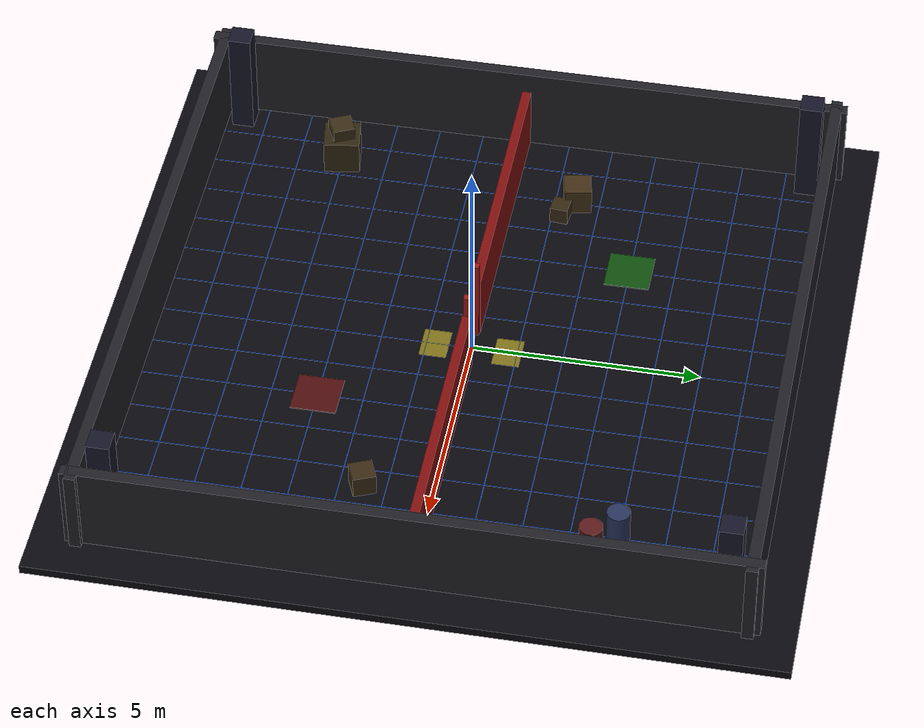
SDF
<sdf version="1.9">
 <world name="swarm_arena">
  <scene><ambient>0.3 0.3 0.35 1</ambient><background>0.05 0.05 0.08 1</background></scene>
  <physics name="1ms" type="ignored">
   <max_step_size>0.001</max_step_size>
   <real_time_factor>1.0</real_time_factor>
  </physics>
  <plugin filename="gz-sim-physics-system" name="gz::sim::systems::Physics"/>
  <plugin filename="gz-sim-scene-broadcaster-system" name="gz::sim::systems::SceneBroadcaster"/>
  <plugin filename="gz-sim-user-commands-system" name="gz::sim::systems::UserCommands"/>
  <light type="directional" name="sun">
   <pose>5 5 15 0 0 0</pose>
   <diffuse>0.85 0.85 0.8 1</diffuse>
   <specular>0.4 0.4 0.4 1</specular>
   <direction>-0.4 -0.3 -0.9</direction>
  </light>
  <light type="directional" name="fill">
   <cast_shadows>false</cast_shadows>
   <pose>-5 -5 10 0 0 0</pose>
   <diffuse>0.25 0.25 0.35 1</diffuse>
   <specular>0.0 0.0 0.0 1</specular>
   <direction>0.4 0.3 -0.8</direction>
  </light>
  <light type="directional" name="rim">
   <cast_shadows>false</cast_shadows>
   <pose>0 -8 8 0 0 0</pose>
   <diffuse>0.15 0.15 0.25 1</diffuse>
   <specular>0.1 0.1 0.1 1</specular>
   <direction>0 0.6 -0.8</direction>
  </light>
  <model name="ground_platform">
   <static>true</static>
   <pose>0 0 -0.1 0 0 0</pose>
   <link name="link">
    <collision name="collision"><geometry><box><size>16 16 0.2</size></box></geometry></collision>
    <visual name="top">
     <geometry><box><size>16 16 0.2</size></box></geometry>
     <material><ambient>0.03 0.03 0.05 1</ambient><diffuse>0.03 0.03 0.05 1</diffuse></material>
    </visual>
   </link>
  </model>
  <model name="grid_lines">
   <static>true</static>
   <pose>0 0 0.002 0 0 0</pose>
   <link name="link">
    <visual name="h_n7">
     <pose>0 -7 0 0 0 0</pose>
     <geometry><box><size>14 0.015 0.001</size></box></geometry>
     <material><ambient>0.0 0.3 1.0 1</ambient><diffuse>0.0 0.3 1.0 1</diffuse></material>
    </visual>
    <visual name="h_n6">
     <pose>0 -6 0 0 0 0</pose>
     <geometry><box><size>14 0.015 0.001</size></box></geometry>
     <material><ambient>0.0 0.3 1.0 1</ambient><diffuse>0.0 0.3 1.0 1</diffuse></material>
    </visual>
    <visual name="h_n5">
     <pose>0 -5 0 0 0 0</pose>
     <geometry><box><size>14 0.015 0.001</size></box></geometry>
     <material><ambient>0.0 0.3 1.0 1</ambient><diffuse>0.0 0.3 1.0 1</diffuse></material>
    </visual>
    <visual name="h_n4">
     <pose>0 -4 0 0 0 0</pose>
     <geometry><box><size>14 0.015 0.001</size></box></geometry>
     <material><ambient>0.0 0.3 1.0 1</ambient><diffuse>0.0 0.3 1.0 1</diffuse></material>
    </visual>
    <visual name="h_n3">
     <pose>0 -3 0 0 0 0</pose>
     <geometry><box><size>14 0.015 0.001</size></box></geometry>
     <material><ambient>0.0 0.3 1.0 1</ambient><diffuse>0.0 0.3 1.0 1</diffuse></material>
    </visual>
    <visual name="h_n2">
     <pose>0 -2 0 0 0 0</pose>
     <geometry><box><size>14 0.015 0.001</size></box></geometry>
     <material><ambient>0.0 0.3 1.0 1</ambient><diffuse>0.0 0.3 1.0 1</diffuse></material>
    </visual>
    <visual name="h_n1">
     <pose>0 -1 0 0 0 0</pose>
     <geometry><box><size>14 0.015 0.001</size></box></geometry>
     <material><ambient>0.0 0.3 1.0 1</ambient><diffuse>0.0 0.3 1.0 1</diffuse></material>
    </visual>
    <visual name="h_0">
     <geometry><box><size>14 0.015 0.001</size></box></geometry>
     <material><ambient>0.0 0.3 1.0 1</ambient><diffuse>0.0 0.3 1.0 1</diffuse></material>
    </visual>
    <visual name="h_p1">
     <pose>0 1 0 0 0 0</pose>
     <geometry><box><size>14 0.015 0.001</size></box></geometry>
     <material><ambient>0.0 0.3 1.0 1</ambient><diffuse>0.0 0.3 1.0 1</diffuse></material>
    </visual>
    <visual name="h_p2">
     <pose>0 2 0 0 0 0</pose>
     <geometry><box><size>14 0.015 0.001</size></box></geometry>
     <material><ambient>0.0 0.3 1.0 1</ambient><diffuse>0.0 0.3 1.0 1</diffuse></material>
    </visual>
    <visual name="h_p3">
     <pose>0 3 0 0 0 0</pose>
     <geometry><box><size>14 0.015 0.001</size></box></geometry>
     <material><ambient>0.0 0.3 1.0 1</ambient><diffuse>0.0 0.3 1.0 1</diffuse></material>
    </visual>
    <visual name="h_p4">
     <pose>0 4 0 0 0 0</pose>
     <geometry><box><size>14 0.015 0.001</size></box></geometry>
     <material><ambient>0.0 0.3 1.0 1</ambient><diffuse>0.0 0.3 1.0 1</diffuse></material>
    </visual>
    <visual name="h_p5">
     <pose>0 5 0 0 0 0</pose>
     <geometry><box><size>14 0.015 0.001</size></box></geometry>
     <material><ambient>0.0 0.3 1.0 1</ambient><diffuse>0.0 0.3 1.0 1</diffuse></material>
    </visual>
    <visual name="h_p6">
     <pose>0 6 0 0 0 0</pose>
     <geometry><box><size>14 0.015 0.001</size></box></geometry>
     <material><ambient>0.0 0.3 1.0 1</ambient><diffuse>0.0 0.3 1.0 1</diffuse></material>
    </visual>
    <visual name="h_p7">
     <pose>0 7 0 0 0 0</pose>
     <geometry><box><size>14 0.015 0.001</size></box></geometry>
     <material><ambient>0.0 0.3 1.0 1</ambient><diffuse>0.0 0.3 1.0 1</diffuse></material>
    </visual>
    <visual name="v_n7">
     <pose>-7 0 0 0 0 0</pose>
     <geometry><box><size>0.015 14 0.001</size></box></geometry>
     <material><ambient>0.0 0.3 1.0 1</ambient><diffuse>0.0 0.3 1.0 1</diffuse></material>
    </visual>
    <visual name="v_n6">
     <pose>-6 0 0 0 0 0</pose>
     <geometry><box><size>0.015 14 0.001</size></box></geometry>
     <material><ambient>0.0 0.3 1.0 1</ambient><diffuse>0.0 0.3 1.0 1</diffuse></material>
    </visual>
    <visual name="v_n5">
     <pose>-5 0 0 0 0 0</pose>
     <geometry><box><size>0.015 14 0.001</size></box></geometry>
     <material><ambient>0.0 0.3 1.0 1</ambient><diffuse>0.0 0.3 1.0 1</diffuse></material>
    </visual>
    <visual name="v_n4">
     <pose>-4 0 0 0 0 0</pose>
     <geometry><box><size>0.015 14 0.001</size></box></geometry>
     <material><ambient>0.0 0.3 1.0 1</ambient><diffuse>0.0 0.3 1.0 1</diffuse></material>
    </visual>
    <visual name="v_n3">
     <pose>-3 0 0 0 0 0</pose>
     <geometry><box><size>0.015 14 0.001</size></box></geometry>
     <material><ambient>0.0 0.3 1.0 1</ambient><diffuse>0.0 0.3 1.0 1</diffuse></material>
    </visual>
    <visual name="v_n2">
     <pose>-2 0 0 0 0 0</pose>
     <geometry><box><size>0.015 14 0.001</size></box></geometry>
     <material><ambient>0.0 0.3 1.0 1</ambient><diffuse>0.0 0.3 1.0 1</diffuse></material>
    </visual>
    <visual name="v_n1">
     <pose>-1 0 0 0 0 0</pose>
     <geometry><box><size>0.015 14 0.001</size></box></geometry>
     <material><ambient>0.0 0.3 1.0 1</ambient><diffuse>0.0 0.3 1.0 1</diffuse></material>
    </visual>
    <visual name="v_0">
     <geometry><box><size>0.015 14 0.001</size></box></geometry>
     <material><ambient>0.0 0.3 1.0 1</ambient><diffuse>0.0 0.3 1.0 1</diffuse></material>
    </visual>
    <visual name="v_p1">
     <pose>1 0 0 0 0 0</pose>
     <geometry><box><size>0.015 14 0.001</size></box></geometry>
     <material><ambient>0.0 0.3 1.0 1</ambient><diffuse>0.0 0.3 1.0 1</diffuse></material>
    </visual>
    <visual name="v_p2">
     <pose>2 0 0 0 0 0</pose>
     <geometry><box><size>0.015 14 0.001</size></box></geometry>
     <material><ambient>0.0 0.3 1.0 1</ambient><diffuse>0.0 0.3 1.0 1</diffuse></material>
    </visual>
    <visual name="v_p3">
     <pose>3 0 0 0 0 0</pose>
     <geometry><box><size>0.015 14 0.001</size></box></geometry>
     <material><ambient>0.0 0.3 1.0 1</ambient><diffuse>0.0 0.3 1.0 1</diffuse></material>
    </visual>
    <visual name="v_p4">
     <pose>4 0 0 0 0 0</pose>
     <geometry><box><size>0.015 14 0.001</size></box></geometry>
     <material><ambient>0.0 0.3 1.0 1</ambient><diffuse>0.0 0.3 1.0 1</diffuse></material>
    </visual>
    <visual name="v_p5">
     <pose>5 0 0 0 0 0</pose>
     <geometry><box><size>0.015 14 0.001</size></box></geometry>
     <material><ambient>0.0 0.3 1.0 1</ambient><diffuse>0.0 0.3 1.0 1</diffuse></material>
    </visual>
    <visual name="v_p6">
     <pose>6 0 0 0 0 0</pose>
     <geometry><box><size>0.015 14 0.001</size></box></geometry>
     <material><ambient>0.0 0.3 1.0 1</ambient><diffuse>0.0 0.3 1.0 1</diffuse></material>
    </visual>
    <visual name="v_p7">
     <pose>7 0 0 0 0 0</pose>
     <geometry><box><size>0.015 14 0.001</size></box></geometry>
     <material><ambient>0.0 0.3 1.0 1</ambient><diffuse>0.0 0.3 1.0 1</diffuse></material>
    </visual>
   </link>
  </model>
  <model name="wall_north">
   <static>true</static>
   <pose>0 7 1.0 0 0 0</pose>
   <link name="link">
    <collision name="collision"><geometry><box><size>14.5 0.25 2.0</size></box></geometry></collision>
    <visual name="visual">
     <geometry><box><size>14.5 0.25 2.0</size></box></geometry>
     <material><ambient>0.12 0.12 0.14 1</ambient><diffuse>0.12 0.12 0.14 1</diffuse></material>
    </visual>
   </link>
  </model>
  <model name="wall_south">
   <static>true</static>
   <pose>0 -7 1.0 0 0 0</pose>
   <link name="link">
    <collision name="collision"><geometry><box><size>14.5 0.25 2.0</size></box></geometry></collision>
    <visual name="visual">
     <geometry><box><size>14.5 0.25 2.0</size></box></geometry>
     <material><ambient>0.12 0.12 0.14 1</ambient><diffuse>0.12 0.12 0.14 1</diffuse></material>
    </visual>
   </link>
  </model>
  <model name="wall_east">
   <static>true</static>
   <pose>7 0 1.0 0 0 0</pose>
   <link name="link">
    <collision name="collision"><geometry><box><size>0.25 14.5 2.0</size></box></geometry></collision>
    <visual name="visual">
     <geometry><box><size>0.25 14.5 2.0</size></box></geometry>
     <material><ambient>0.12 0.12 0.14 1</ambient><diffuse>0.12 0.12 0.14 1</diffuse></material>
    </visual>
   </link>
  </model>
  <model name="wall_west">
   <static>true</static>
   <pose>-7 0 1.0 0 0 0</pose>
   <link name="link">
    <collision name="collision"><geometry><box><size>0.25 14.5 2.0</size></box></geometry></collision>
    <visual name="visual">
     <geometry><box><size>0.25 14.5 2.0</size></box></geometry>
     <material><ambient>0.12 0.12 0.14 1</ambient><diffuse>0.12 0.12 0.14 1</diffuse></material>
    </visual>
   </link>
  </model>
  <model name="pillar_nw">
   <static>true</static>
   <pose>-6.5 6.5 1.25 0 0 0</pose>
   <link name="link">
    <collision name="collision"><geometry><box><size>0.5 0.5 2.5</size></box></geometry></collision>
    <visual name="visual">
     <geometry><box><size>0.5 0.5 2.5</size></box></geometry>
     <material><ambient>0.08 0.08 0.15 1</ambient><diffuse>0.08 0.08 0.15 1</diffuse></material>
    </visual>
   </link>
  </model>
  <model name="pillar_ne">
   <static>true</static>
   <pose>6.5 6.5 1.25 0 0 0</pose>
   <link name="link">
    <collision name="collision"><geometry><box><size>0.5 0.5 2.5</size></box></geometry></collision>
    <visual name="visual">
     <geometry><box><size>0.5 0.5 2.5</size></box></geometry>
     <material><ambient>0.08 0.08 0.15 1</ambient><diffuse>0.08 0.08 0.15 1</diffuse></material>
    </visual>
   </link>
  </model>
  <model name="pillar_sw">
   <static>true</static>
   <pose>-6.5 -6.5 1.25 0 0 0</pose>
   <link name="link">
    <collision name="collision"><geometry><box><size>0.5 0.5 2.5</size></box></geometry></collision>
    <visual name="visual">
     <geometry><box><size>0.5 0.5 2.5</size></box></geometry>
     <material><ambient>0.08 0.08 0.15 1</ambient><diffuse>0.08 0.08 0.15 1</diffuse></material>
    </visual>
   </link>
  </model>
  <model name="pillar_se">
   <static>true</static>
   <pose>6.5 -6.5 1.25 0 0 0</pose>
   <link name="link">
    <collision name="collision"><geometry><box><size>0.5 0.5 2.5</size></box></geometry></collision>
    <visual name="visual">
     <geometry><box><size>0.5 0.5 2.5</size></box></geometry>
     <material><ambient>0.08 0.08 0.15 1</ambient><diffuse>0.08 0.08 0.15 1</diffuse></material>
    </visual>
   </link>
  </model>
  <model name="passage_wall_left">
   <static>true</static>
   <pose>-3.75 0 0.75 0 0 0</pose>
   <link name="link">
    <collision name="collision"><geometry><box><size>6.5 0.2 1.5</size></box></geometry></collision>
    <visual name="visual">
     <geometry><box><size>6.5 0.2 1.5</size></box></geometry>
     <material><ambient>0.5 0.05 0.05 1</ambient><diffuse>0.5 0.05 0.05 1</diffuse></material>
    </visual>
   </link>
  </model>
  <model name="passage_wall_right">
   <static>true</static>
   <pose>3.75 0 0.75 0 0 0</pose>
   <link name="link">
    <collision name="collision"><geometry><box><size>6.5 0.2 1.5</size></box></geometry></collision>
    <visual name="visual">
     <geometry><box><size>6.5 0.2 1.5</size></box></geometry>
     <material><ambient>0.5 0.05 0.05 1</ambient><diffuse>0.5 0.05 0.05 1</diffuse></material>
    </visual>
   </link>
  </model>
  <model name="gate_pillar_left">
   <static>true</static>
   <pose>-0.5 0 1.0 0 0 0</pose>
   <link name="link">
    <visual name="visual">
     <geometry><box><size>0.15 0.15 2.0</size></box></geometry>
     <material><ambient>0.6 0.1 0.1 1</ambient><diffuse>0.6 0.1 0.1 1</diffuse></material>
    </visual>
   </link>
  </model>
  <model name="gate_pillar_right">
   <static>true</static>
   <pose>0.5 0 1.0 0 0 0</pose>
   <link name="link">
    <visual name="visual">
     <geometry><box><size>0.15 0.15 2.0</size></box></geometry>
     <material><ambient>0.6 0.1 0.1 1</ambient><diffuse>0.6 0.1 0.1 1</diffuse></material>
    </visual>
   </link>
  </model>
  <model name="yield_zone_north">
   <static>true</static>
   <pose>0 0.8 0.003 0 0 0</pose>
   <link name="link">
    <visual name="visual">
     <geometry><box><size>0.8 0.6 0.002</size></box></geometry>
     <material><ambient>1.0 0.9 0.2 0.5</ambient><diffuse>1.0 0.9 0.2 0.5</diffuse></material>
    </visual>
   </link>
  </model>
  <model name="yield_zone_south">
   <static>true</static>
   <pose>0 -0.8 0.003 0 0 0</pose>
   <link name="link">
    <visual name="visual">
     <geometry><box><size>0.8 0.6 0.002</size></box></geometry>
     <material><ambient>1.0 0.9 0.2 0.5</ambient><diffuse>1.0 0.9 0.2 0.5</diffuse></material>
    </visual>
   </link>
  </model>
  <model name="station_a_pad">
   <static>true</static>
   <pose>-3 3 0.015 0 0 0</pose>
   <link name="link">
    <visual name="visual">
     <geometry><box><size>1.0 1.0 0.03</size></box></geometry>
     <material><ambient>0.05 0.3 0.05 1</ambient><diffuse>0.05 0.3 0.05 1</diffuse></material>
    </visual>
   </link>
  </model>
  <model name="station_d_pad">
   <static>true</static>
   <pose>2 -3 0.015 0 0 0</pose>
   <link name="link">
    <visual name="visual">
     <geometry><box><size>1.0 1.0 0.03</size></box></geometry>
     <material><ambient>0.3 0.05 0.05 1</ambient><diffuse>0.3 0.05 0.05 1</diffuse></material>
    </visual>
   </link>
  </model>
  <model name="crate_1">
   <static>true</static>
   <pose>-5 1.5 0.3 0 0 0.2</pose>
   <link name="link">
    <collision name="collision"><geometry><box><size>0.6 0.6 0.6</size></box></geometry></collision>
    <visual name="visual">
     <geometry><box><size>0.6 0.6 0.6</size></box></geometry>
     <material><ambient>0.25 0.18 0.08 1</ambient><diffuse>0.25 0.18 0.08 1</diffuse></material>
    </visual>
   </link>
  </model>
  <model name="crate_2">
   <static>true</static>
   <pose>-4.5 1.2 0.2 0 0 -0.1</pose>
   <link name="link">
    <collision name="collision"><geometry><box><size>0.4 0.4 0.4</size></box></geometry></collision>
    <visual name="visual">
     <geometry><box><size>0.4 0.4 0.4</size></box></geometry>
     <material><ambient>0.2 0.15 0.06 1</ambient><diffuse>0.2 0.15 0.06 1</diffuse></material>
    </visual>
   </link>
  </model>
  <model name="crate_3">
   <static>true</static>
   <pose>4.5 -1.5 0.25 0 0 0.4</pose>
   <link name="link">
    <collision name="collision"><geometry><box><size>0.5 0.5 0.5</size></box></geometry></collision>
    <visual name="visual">
     <geometry><box><size>0.5 0.5 0.5</size></box></geometry>
     <material><ambient>0.22 0.16 0.07 1</ambient><diffuse>0.22 0.16 0.07 1</diffuse></material>
    </visual>
   </link>
  </model>
  <model name="barrel_1">
   <static>true</static>
   <pose>5 4 0.4 0 0 0</pose>
   <link name="link">
    <collision name="collision">
     <geometry><cylinder><radius>0.25</radius><length>0.8</length></cylinder></geometry>
    </collision>
    <visual name="visual">
     <geometry><cylinder><radius>0.25</radius><length>0.8</length></cylinder></geometry>
     <material><ambient>0.15 0.2 0.35 1</ambient><diffuse>0.15 0.2 0.35 1</diffuse></material>
    </visual>
   </link>
  </model>
  <model name="barrel_2">
   <static>true</static>
   <pose>5.5 3.5 0.4 0 0 0</pose>
   <link name="link">
    <collision name="collision">
     <geometry><cylinder><radius>0.25</radius><length>0.8</length></cylinder></geometry>
    </collision>
    <visual name="visual">
     <geometry><cylinder><radius>0.25</radius><length>0.8</length></cylinder></geometry>
     <material><ambient>0.35 0.1 0.1 1</ambient><diffuse>0.35 0.1 0.1 1</diffuse></material>
    </visual>
   </link>
  </model>
  <model name="crate_stack">
   <static>true</static>
   <pose>-5.5 -4 0.4 0 0 0.15</pose>
   <link name="link">
    <collision name="collision"><geometry><box><size>0.8 0.8 0.8</size></box></geometry></collision>
    <visual name="bottom">
     <geometry><box><size>0.8 0.8 0.8</size></box></geometry>
     <material><ambient>0.18 0.14 0.06 1</ambient><diffuse>0.18 0.14 0.06 1</diffuse></material>
    </visual>
    <visual name="top">
     <pose>0 0 0.55 0 0 0.3</pose>
     <geometry><box><size>0.5 0.5 0.3</size></box></geometry>
     <material><ambient>0.22 0.17 0.08 1</ambient><diffuse>0.22 0.17 0.08 1</diffuse></material>
    </visual>
   </link>
  </model>
 </world>
</sdf>
